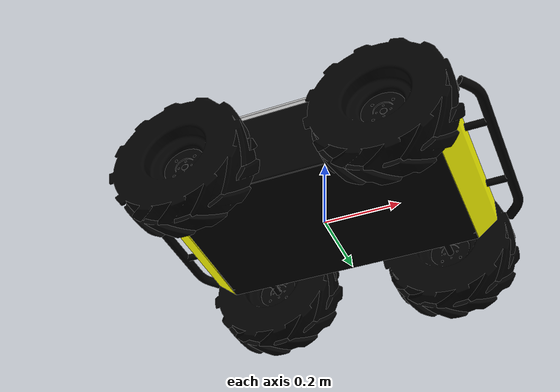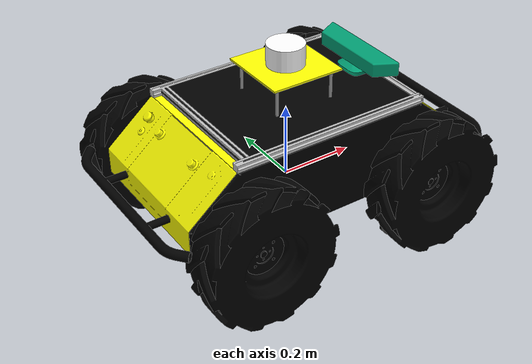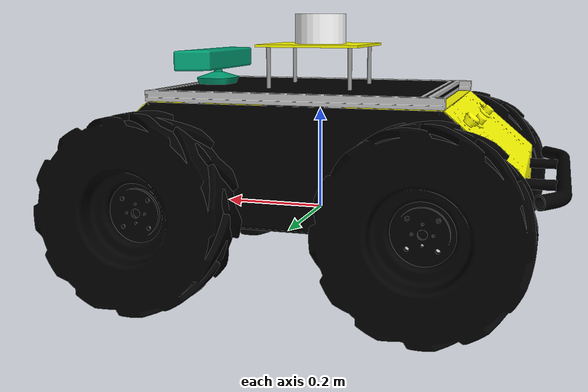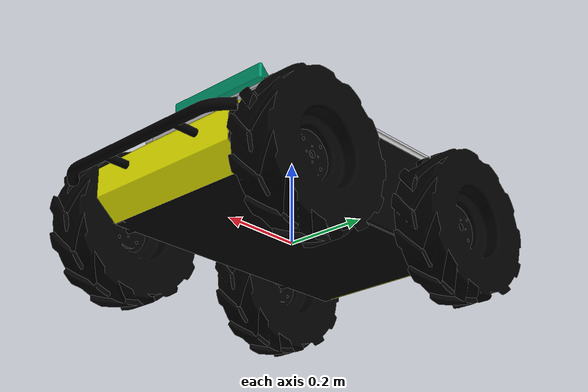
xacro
<?xml version="1.0"?>
<robot name="r200" xmlns:xacro="http://www.ros.org/wiki/xacro">
	<!--robot-->
	<xacro:include filename="$(find r200_simulation)/models/r200.xacro" />
	<!--3D plidar-->
	<xacro:include filename="$(find r200_simulation)/models/3d_lidar.xacro" />
	<!--depth_camera-->
  <xacro:include filename="$(find r200_simulation)/models/depth_camera.xacro" />

	<!--lidar args-->
	<xacro:property name="rplidar_offset_x" value="0" />
	<xacro:property name="rplidar_offset_y" value="0" />
	<xacro:property name="rplidar_offset_z" value="0.355" />

	<!--depth_camera args-->
  <xacro:property name="camera_offset_x" value="0.22" />
  <xacro:property name="camera_offset_y" value="0" />
  <xacro:property name="camera_offset_z" value="0.28" />

	<!--3d_lidar joint-->
	<joint name="rplidar_joint" type="fixed">
		<origin xyz="${rplidar_offset_x} ${rplidar_offset_y} ${rplidar_offset_z}" rpy="0 0 0" />
		<parent link="base_link"/>
		<child link="laser"/>
	</joint>
	<xacro:lidar prefix="3d_lidar"/>

	<!--depth_camera joint-->
    <joint name="kinect_frame_joint" type="fixed">
        <origin xyz="${camera_offset_x} ${camera_offset_y} ${camera_offset_z}" rpy="0 0 0" />
        <parent link="base_link"/>
        <child link="camera_link"/>
    </joint>
    <xacro:depth_camera prefix="camera"/>

</robot>

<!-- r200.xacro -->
<robot name="r200" xmlns:xacro="http://www.ros.org/wiki/xacro">

		<!--color setting-->
    <material name="Black">
      <color rgba="0 0 0 1"/>
    </material>

    <material name="Gray">
      <color rgba="0.75 0.75 0.75 1"/>
    </material>

    <material name="White">
      <color rgba="1 1 1 0.9"/>
    </material>

    <material name="Yellow">
      <color rgba="255 255 0 0.9"/>
    </material>

		<!--base link-->
    <link name="base_link">
      <inertial>
        <mass value="0.855"/>
        <origin xyz="0 0 0"/>
        <inertia ixx="2.2" ixy="0.0" ixz="0.0" iyy="30" iyz="0.0" izz="30" />
      </inertial>
      <visual>
        <origin xyz=" 0 0 0" rpy="0 0 0"/>
         <geometry>
           <mesh filename="package://prometheus_gazebo/gazebo_models/r200_models/meshes/base_link.stl"/>
         </geometry>
         <material name="Black"/>
      </visual>
      <collision>
       <origin xyz=" 0 0 0.1" rpy="0 0 0"/>
         <geometry>
           <box size="1.0074 0.5709 0.2675"/>
         </geometry>
      </collision>
    </link>

		<gazebo reference="base_link">
			<material>Gazebo/Black</material>
   	</gazebo>

		<link name="base_footprint">
			<visual>
				<origin xyz="0 0 0" rpy="0 0 0"/>
				<geometry>
					<box size="0.001 0.001 0.001"/>
				</geometry>
			</visual>
		</link>

		<joint name="base_footprint_joint" type="fixed">
			<origin xyz="0 0 0" rpy="0 0 0"/>
			<parent link ="base_footprint"/>
			<child link="base_link"/>
		</joint>

    <!-- Top Plate -->
		<link name="top_plate">
			<visual>
        <origin xyz=" 0 0 0" rpy="0 0 0"/>
        <geometry>
          <mesh filename="package://prometheus_gazebo/gazebo_models/r200_models/meshes/top_plate.stl"/>
        </geometry>
        <material name="Yellow"/>
      </visual>
		</link>

    <gazebo reference="top_plate">
			<material>Gazebo/Yellow</material>
    </gazebo>

		<joint name="top_plate_joint" type="fixed">
			<origin xyz="0 0 0" rpy="0 0 0"/>
			<parent link="base_link"/>
			<child link="top_plate"/>
		</joint>

    <!-- Front Bumper -->
		<link name="front_bumper">
			<visual>
        <origin xyz="0.47 0 0.091" rpy="0 0 0"/>
        <geometry>
          <mesh filename="package://prometheus_gazebo/gazebo_models/r200_models/meshes/bumper.stl"/>
        </geometry>
        <material name="Black"/>
      </visual>
		</link>

    <gazebo reference="front_bumper">
      <material>Gazebo/Black</material>
    </gazebo>

		<joint name="front_bumper_joint" type="fixed">
			<origin xyz="0 0 0" rpy="0 0 0"/>
			<parent link="base_link"/>
			<child link="front_bumper"/>
		</joint>

    <!-- Top Board -->
		<link name="top_board">
			<visual>
        <origin xyz="0 0 0" rpy="0 0 0"/>
        <geometry>
          <box size="0.5 0.4 0.02"/>
        </geometry>
        <material name="Black"/>
      </visual>
		</link>

    <gazebo reference="top_board">
      <material>Gazebo/Black</material>
    </gazebo>

		<joint name="top_board_joint" type="fixed">
			<origin xyz="0 0 0.235" rpy="0 0 0"/>
			<parent link="base_link"/>
			<child link="top_board"/>
		</joint>

    <!-- Lidar Board -->
		<link name="lidar_board">
			<visual>
        <origin xyz="0 0 0" rpy="0 0 0"/>
        <geometry>
          <box size="0.2 0.2 0.005"/>
        </geometry>
        <material name="Yellow"/>
      </visual>
		</link>

    <gazebo reference="lidar_board">
      <material>Gazebo/Yellow</material>
    </gazebo>

		<joint name="lidar_board_joint" type="fixed">
			<origin xyz="0 0 0.09" rpy="0 0 0"/>
			<parent link="top_board"/>
			<child link="lidar_board"/>
		</joint>

    <!-- Lidar Pillar1 -->
		<link name="lidar_pillar1">
			<visual>
        <origin xyz="0 0 0" rpy="0 0 0"/>
        <geometry>
          <cylinder length="0.09" radius="0.004"/>
        </geometry>
        <material name="Grey"/>
      </visual>
		</link>

    <gazebo reference="lidar_pillar1">
      <material>Gazebo/Grey</material>
    </gazebo>

		<joint name="lidar_pillar1_joint" type="fixed">
			<origin xyz="0.08 0.08 -0.045" rpy="0 0 0"/>
			<parent link="lidar_board"/>
			<child link="lidar_pillar1"/>
		</joint>

    <!-- Lidar Pillar2 -->
		<link name="lidar_pillar2">
			<visual>
        <origin xyz="0 0 0" rpy="0 0 0"/>
        <geometry>
          <cylinder length="0.09" radius="0.004"/>
        </geometry>
        <material name="Grey"/>
      </visual>
		</link>

    <gazebo reference="lidar_pillar2">
      <material>Gazebo/Grey</material>
    </gazebo>

		<joint name="lidar_pillar2_joint" type="fixed">
			<origin xyz="0.08 -0.08 -0.045" rpy="0 0 0"/>
			<parent link="lidar_board"/>
			<child link="lidar_pillar2"/>
		</joint>

    <!-- Lidar Pillar3 -->
		<link name="lidar_pillar3">
			<visual>
        <origin xyz="0 0 0" rpy="0 0 0"/>
        <geometry>
          <cylinder length="0.09" radius="0.004"/>
        </geometry>
        <material name="Grey"/>
      </visual>
		</link>

    <gazebo reference="lidar_pillar3">
      <material>Gazebo/Grey</material>
    </gazebo>

		<joint name="lidar_pillar3_joint" type="fixed">
			<origin xyz="-0.08 -0.08 -0.045" rpy="0 0 0"/>
			<parent link="lidar_board"/>
			<child link="lidar_pillar3"/>
		</joint>

    <!-- Lidar Pillar4 -->
		<link name="lidar_pillar4">
			<visual>
        <origin xyz="0 0 0" rpy="0 0 0"/>
        <geometry>
          <cylinder length="0.09" radius="0.004"/>
        </geometry>
        <material name="Grey"/>
      </visual>
		</link>

    <gazebo reference="lidar_pillar4">
      <material>Gazebo/Grey</material>
    </gazebo>

		<joint name="lidar_pillar4_joint" type="fixed">
			<origin xyz="-0.08 0.08 -0.045" rpy="0 0 0"/>
			<parent link="lidar_board"/>
			<child link="lidar_pillar4"/>
		</joint>

    <!-- Rear Bumper -->
		<link name="rear_bumper">
			<visual>
        <origin xyz="-0.47 0 0.091" rpy="0 0 3.141"/>
        <geometry>
          <mesh filename="package://prometheus_gazebo/gazebo_models/r200_models/meshes/bumper.stl"/>
        </geometry>
        <material name="Black"/>
      </visual>
		</link>

    <gazebo reference="rear_bumper">
      <material>Gazebo/Black</material>
    </gazebo>

		<joint name="rear_bumper_joint" type="fixed">
			<origin xyz="0 0 0" rpy="0 0 0"/>
			<parent link="base_link"/>
			<child link="rear_bumper"/>
		</joint>

    <!-- User Rail -->
		<link name="user_rail">
			<visual>
        <origin xyz="0.272 0 0.245" rpy="0 0 0"/>
        <geometry>
          <mesh filename="package://prometheus_gazebo/gazebo_models/r200_models/meshes/user_rail.stl"/>
        </geometry>
        <material name="Gray"/>
      </visual>
		</link>

		<gazebo reference="user_rail">
      <material>Gazebo/Gray</material>
    </gazebo>

		<joint name="user_rail_joint" type="fixed">
			<origin xyz="0 0 0" rpy="0 0 0"/>
			<parent link="base_link"/>
			<child link="user_rail"/>
		</joint>

    <!-- Back Left Wheel -->
		<link name="back_left_wheel">
      <inertial>
        <mass value="0.26357"/>
        <origin xyz="0 0 0"/>
        <inertia ixx="0.05" ixy="0.0" ixz="0.0" iyy="0.05" iyz="0.0" izz="0.1" />
      </inertial>
      <visual>
        <origin xyz="0 0 0" rpy="-3.14159 0 0"/>
        <geometry>
          <mesh filename="package://prometheus_gazebo/gazebo_models/r200_models/meshes/wheel.stl"/>
        </geometry>
        <material name="Black"/>
      </visual>
      <collision>
        <origin xyz=" 0 0 0" rpy="1.5707 0 0"/>
        <geometry>
          <cylinder radius="0.17775" length="0.1143"/>
        </geometry>
      </collision>
    </link>

    <gazebo reference="back_left_wheel">
      <material>Gazebo/Gray</material>
    </gazebo>

		<joint name="back_left_joint" type="fixed">
      <origin xyz="-0.256 0.285475 0.035" rpy="0 0 0"/>
      <parent link="base_link"/>
      <child link="back_left_wheel"/>
			<axis xyz="0 1 0"/>
    </joint>

    <!-- Back Right Wheel -->
		<link name="back_right_wheel">
      <inertial>
        <mass value="0.26357"/>
        <origin xyz="0 0 0"/>
        <inertia ixx="0.05" ixy="0.0" ixz="0.0" iyy="0.05" iyz="0.0" izz="0.1" />
      </inertial>
      <visual>
        <origin xyz="0 0 0" rpy="-3.14159 0 0"/>
        <geometry>
          <mesh filename="package://prometheus_gazebo/gazebo_models/r200_models/meshes/wheel.stl"/>
        </geometry>
       	<material name="Black"/>
      </visual>
      <collision>
        <origin xyz=" 0 0 0" rpy="1.5707 0 0"/>
        <geometry>
          <cylinder radius="0.17775" length="0.1143"/>
        </geometry>
      </collision>
    </link>

    <gazebo reference="back_right_wheel">
      <material>Gazebo/Gray</material>
    </gazebo>

		<joint name="back_right_joint" type="fixed">
      <origin xyz="-0.256 -0.285475 0.035" rpy="0 0 0"/>
      <parent link="base_link"/>
      <child link="back_right_wheel"/>
			<axis xyz="0 1 0"/>
    </joint>

    <!-- Front Left Wheel -->
		<link name="front_left_wheel">
      <inertial>
        <mass value="0.26357"/>
        <origin xyz="0 0 0"/>
        <inertia ixx="0.05" ixy="0.0" ixz="0.0" iyy="0.05" iyz="0.0" izz="0.1" />
      </inertial>
      <visual>
        <origin xyz="0 0 0" rpy="-3.14159 0 0"/>
        <geometry>
          <mesh filename="package://prometheus_gazebo/gazebo_models/r200_models/meshes/wheel.stl"/>
        </geometry>
        <material name="Black"/>
      </visual>
      <collision>
        <origin xyz=" 0 0 0" rpy="1.5707 0 0"/>
        <geometry>
          <cylinder radius="0.17775" length="0.1143"/>
        </geometry>
      </collision>
    </link>

    <gazebo reference="front_left_wheel">
      <material>Gazebo/Gray</material>
    </gazebo>

		<joint name="front_left_joint" type="fixed">
      <origin xyz="0.256 0.285475 0.035" rpy="0 0 0"/>
      <parent link="base_link"/>
      <child link="front_left_wheel"/>
			<axis xyz="0 1 0"/>
    </joint>

    <!-- Front Right Wheel -->
		<link name="front_right_wheel">
      <inertial>
        <mass value="0.26357"/>
        <origin xyz="0 0 0"/>
        <inertia ixx="0.05" ixy="0.0" ixz="0.0" iyy="0.05" iyz="0.0" izz="0.1" />
     	</inertial>
      <visual>
        <origin xyz="0 0 0" rpy="-3.14159 0 0"/>
        <geometry>
          <mesh filename="package://prometheus_gazebo/gazebo_models/r200_models/meshes/wheel.stl"/>
        </geometry>
        <material name="Black"/>
      </visual>
      <collision>
        <origin xyz=" 0 0 0" rpy="-1.5707 0 0"/>
        <geometry>
          <cylinder radius="0.17775" length="0.1143"/>
        </geometry>
      </collision>
    </link>

    <gazebo reference="front_right_wheel">
      <material>Gazebo/Gray</material>
    </gazebo>

		<joint name="front_right_joint" type="fixed">
      <origin xyz="0.256 -0.285475 0.035" rpy="0 0 0"/>
      <parent link="base_link"/>
      <child link="front_right_wheel"/>
			<axis xyz="0 1 0"/>
    </joint>

		<!--IMU Link-->
		<link name="imu_link">
      <inertial>
        <mass value="0.015"/>
        <origin xyz="0 0 0"/>
        <inertia ixx="1e-05" ixy="0.0" ixz="0.0" iyy="1e-05" iyz="0.0" izz="1e-05" />
      </inertial>
    </link>

		<joint name="amovCar/imu_joint" type="fixed">
      <origin xyz="0.095 0 0.10625" rpy="0 0 0"/>
      <parent link="base_link"/>
      <child link="imu_link"/>
    </joint>

		<!--gazebo plugin-->
		<gazebo>
    	<plugin name="object_controller" filename="libgazebo_ros_planar_move.so">
      	<commandTopic>cmd_vel</commandTopic>
      	<odometryTopic>odom</odometryTopic>
      	<odometryFrame>odom</odometryFrame>
      	<odometryRate>20.0</odometryRate>
      	<robotBaseFrame>base_footprint</robotBaseFrame>
    	</plugin>
  	</gazebo>

  <gazebo reference="imu_link">
    <gravity>true</gravity>
    <sensor name="imu_sensor" type="imu">
      <always_on>true</always_on>
      <update_rate>50</update_rate>
      <visualize>true</visualize>
      <topic>imu</topic>
      <plugin filename="libgazebo_ros_imu_sensor.so" name="imu_plugin">
        <topicName>imu</topicName>
        <bodyName>base_link</bodyName>
        <updateRateHZ>50.0</updateRateHZ>
        <gaussianNoise>0.0</gaussianNoise>
        <xyzOffset> 0 0</xyzOffset>
        <rpyOffset>0 0 0</rpyOffset>
        <frameName>imu_link</frameName>
      </plugin>
      <pose>0 0 0 0 0 0</pose>
    </sensor>
  </gazebo>

</robot>

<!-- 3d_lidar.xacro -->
<robot xmlns:xacro="http://www.ros.org/wiki/xacro" name="laser">

	<xacro:macro name="lidar" params="prefix:=lidar">
		<link name="laser">
			<inertial>
				<mass value="0.1" />
				<origin xyz="0 0 0" />
				<inertia ixx="0.01" ixy="0.0" ixz="0.0"
						 iyy="0.01" iyz="0.0"
						 izz="0.01" />
			</inertial>

			<visual>
				<origin xyz=" 0 0 0 " rpy="0 0 0" />
				<geometry>
					<cylinder length="0.06" radius="0.05"/>
				</geometry>
				<material name="White"/>
			</visual>

			<collision>
				<origin xyz="0.0 0.0 0.0" rpy="0 0 0" />
				<geometry>
					<cylinder length="0.06" radius="0.05"/>
				</geometry>
			</collision>
		</link>

	 <gazebo reference="laser">
				<material>Gazebo/White</material>
        <sensor type="ray" name="rplidar">
          <pose>0 0 0 0 0 0</pose>
          <visualize>false</visualize>
          <update_rate>30</update_rate>
          <ray>
            <scan>
              <horizontal>
                <samples>360</samples>
                <resolution>1</resolution>
                <min_angle>-3.14</min_angle>
                <max_angle>3.14</max_angle>
              </horizontal>
							<vertical>
                <samples>16</samples>
                <resolution>1</resolution>
                <min_angle>-0.2616666</min_angle>
                <max_angle>0.2616666</max_angle>
              </vertical>
						</scan>
            <range>
              <min>0.10</min>
              <max>70.0</max>
              <resolution>0.02</resolution>
            </range>
            <noise>
              <type>gaussian</type>
               <mean>0.0</mean>
              <stddev>0.01</stddev>
            </noise>
          </ray>
            <plugin name="velodyne_plugin" filename="libgazebo_ros_velodyne_laser.so">
            	<topicName>pointcloud</topicName>
            	<frameName>laser</frameName>
							<min_range>0.1</min_range>
							<max_range>70</max_range>
							<gaussianNoise>0.008</gaussianNoise>
        	</plugin>
        </sensor>
      </gazebo>
	</xacro:macro>

</robot>

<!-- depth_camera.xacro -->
<robot xmlns:xacro="http://www.ros.org/wiki/xacro" name="camera">

    <xacro:macro name="depth_camera" params="prefix:=camera">
        <link name="${prefix}_link">
            <origin xyz="0 0 0" rpy="0 0 1.57"/>
            <visual>
                <origin xyz="0 0 0" rpy="0 0 1.57"/>
                <geometry>
                    <mesh filename="package://r200_simulation/models/meshes/kinect.dae" />
                </geometry>
            </visual>
            <collision>
                <geometry>
                    <box size="0.07 0.3 0.09"/>
                </geometry>
            </collision>
        </link>

        <joint name="${prefix}_optical_joint" type="fixed">
            <origin xyz="0 0 0" rpy="-1.57 0 -1.57"/>
            <parent link="${prefix}_link"/>
            <child link="${prefix}_frame_optical"/>
        </joint>

        <link name="${prefix}_frame_optical"/>

        <gazebo reference="${prefix}_link">
            <sensor type="depth" name="${prefix}">
                <always_on>true</always_on>
                <update_rate>20.0</update_rate>
            	<camera>
                	<horizontal_fov>${60.0*3.14/180}</horizontal_fov>
                	<image>
                    	<width>640</width>
                    	<height>480</height>
                    	<format>R8G8B8</format>
                	</image>
                	<clip>
                    	<near>0.05</near>
                    	<far>16.0</far>
                	</clip>
            	</camera>
            	<plugin name="kinect_${prefix}_controller" filename="libgazebo_ros_openni_kinect.so">
        			<alwaysOn>true</alwaysOn>
        			<updateRate>10.0</updateRate>
        			<cameraName>${prefix}</cameraName>
        			<imageTopicName>rgb/image_raw</imageTopicName>
        			<depthImageTopicName>depth/image_raw</depthImageTopicName>
        			<pointCloudTopicName>depth/points</pointCloudTopicName>
        			<cameraInfoTopicName>rgb/camera_info</cameraInfoTopicName>
        			<depthImageCameraInfoTopicName>depth/camera_info</depthImageCameraInfoTopicName>
        			<frameName>camera_frame_optical</frameName>
        			<baseline>0.1</baseline>
        			<distortionK1>0.0</distortionK1>
        			<distortionK2>0.0</distortionK2>
        			<distortionK3>0.0</distortionK3>
        			<distortionT1>0.0</distortionT1>
    				<distortionT2>0.0</distortionT2>
        			<pointCloudCutoff>0.4</pointCloudCutoff>
    			</plugin>
    		</sensor>
  		</gazebo>
	</xacro:macro>

</robot>
